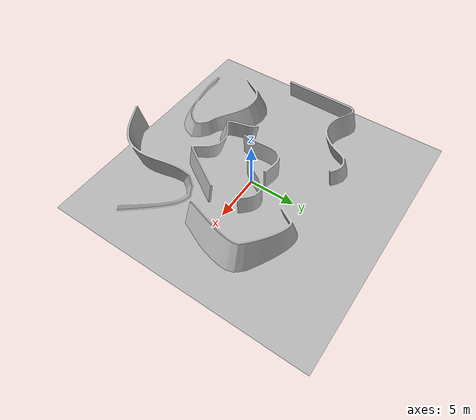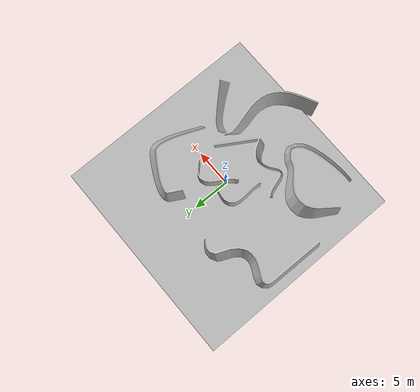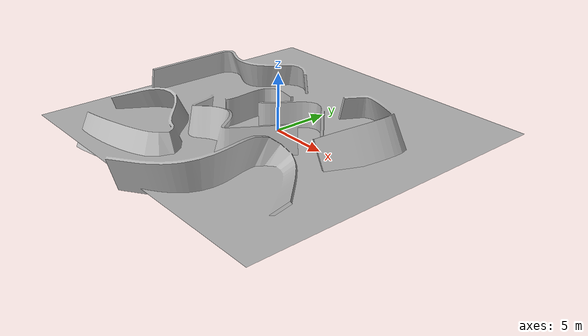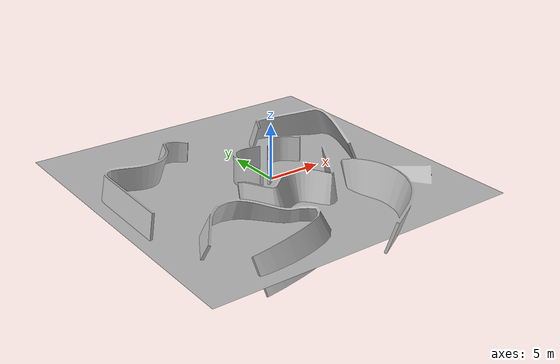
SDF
<?xml version="1.0"?>
<sdf version="1.4">
  <world name="default">
    <include>
      <uri>model://sun</uri>
    </include>
    <model name="my_mesh">
      <pose>0 0 0  0 0 0</pose>
      <static>true</static>
      <link name="body">
        <visual name="visual">
          <geometry>
            <mesh><uri>file://../mesh/curved_maze.dae</uri></mesh>
          </geometry>
        </visual>
      </link>
    </model>
  </world>
</sdf>
